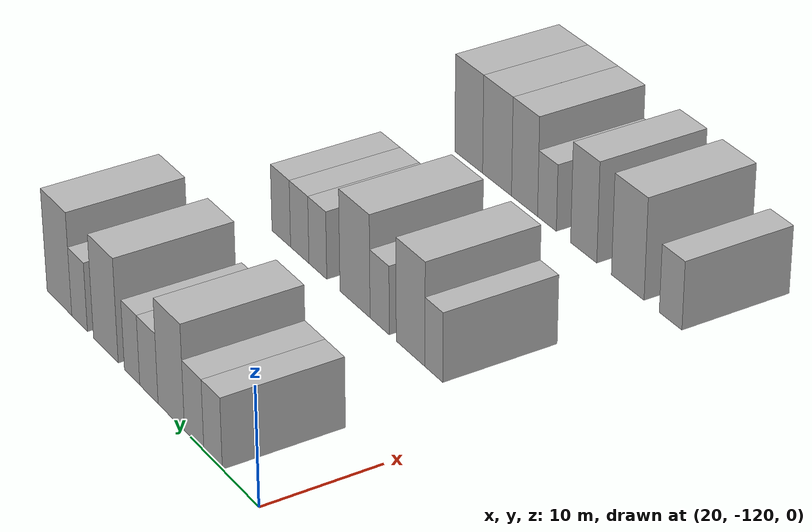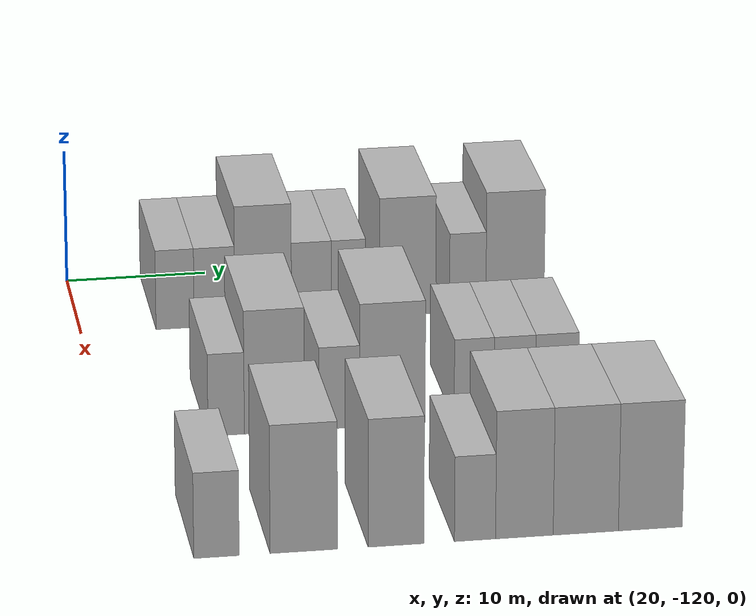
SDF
<sdf version="1.6">
 <world name="default">
  <model name="building_33">
   <static>1</static>
   <pose>25.0000 -113.3362 0 0.000000 0.000000 0.000000</pose>
   <link name="link">
    <pose>0 0 3.00 0 0 0</pose>
    <collision name="collision"><geometry><box><size>10.0000 2.7246 6.0000</size></box></geometry></collision>
    <visual name="visual">
     <cast_shadows>0</cast_shadows>
     <geometry><box><size>10.0000 2.7246 6.0000</size></box></geometry>
     <material>
      <script>
       <uri>model://HANNAS_wall/materials/scripts</uri>
       <uri>model://HANNAS_wall/materials/textures</uri>
       <name>vrc/HANNAS_wall</name>
      </script>
     </material>
    </visual>
   </link>
  </model>
  <model name="building_34">
   <static>1</static>
   <pose>25.0000 -110.5225 0 0.000000 0.000000 0.000000</pose>
   <link name="link">
    <pose>0 0 3.00 0 0 0</pose>
    <collision name="collision"><geometry><box><size>10.0000 2.9027 6.0000</size></box></geometry></collision>
    <visual name="visual">
     <cast_shadows>0</cast_shadows>
     <geometry><box><size>10.0000 2.9027 6.0000</size></box></geometry>
     <material>
      <script>
       <uri>model://HANNAS_wall/materials/scripts</uri>
       <uri>model://HANNAS_wall/materials/textures</uri>
       <name>vrc/HANNAS_wall</name>
      </script>
     </material>
    </visual>
   </link>
  </model>
  <model name="building_35">
   <static>1</static>
   <pose>25.0000 -107.0426 0 0.000000 0.000000 0.000000</pose>
   <link name="link">
    <pose>0 0 4.50 0 0 0</pose>
    <collision name="collision"><geometry><box><size>10.0000 4.0572 9.0000</size></box></geometry></collision>
    <visual name="visual">
     <cast_shadows>0</cast_shadows>
     <geometry><box><size>10.0000 4.0572 9.0000</size></box></geometry>
     <material>
      <script>
       <uri>model://HANNAS_wall/materials/scripts</uri>
       <uri>model://HANNAS_wall/materials/textures</uri>
       <name>vrc/HANNAS_wall</name>
      </script>
     </material>
    </visual>
   </link>
  </model>
  <model name="building_36">
   <static>1</static>
   <pose>25.0000 -103.5754 0 0.000000 0.000000 0.000000</pose>
   <link name="link">
    <pose>0 0 3.00 0 0 0</pose>
    <collision name="collision"><geometry><box><size>10.0000 2.8773 6.0000</size></box></geometry></collision>
    <visual name="visual">
     <cast_shadows>0</cast_shadows>
     <geometry><box><size>10.0000 2.8773 6.0000</size></box></geometry>
     <material>
      <script>
       <uri>model://HANNAS_wall/materials/scripts</uri>
       <uri>model://HANNAS_wall/materials/textures</uri>
       <name>vrc/HANNAS_wall</name>
      </script>
     </material>
    </visual>
   </link>
  </model>
  <model name="building_37">
   <static>1</static>
   <pose>25.0000 -100.9123 0 0.000000 0.000000 0.000000</pose>
   <link name="link">
    <pose>0 0 3.00 0 0 0</pose>
    <collision name="collision"><geometry><box><size>10.0000 2.4487 6.0000</size></box></geometry></collision>
    <visual name="visual">
     <cast_shadows>0</cast_shadows>
     <geometry><box><size>10.0000 2.4487 6.0000</size></box></geometry>
     <material>
      <script>
       <uri>model://HANNAS_wall/materials/scripts</uri>
       <uri>model://HANNAS_wall/materials/textures</uri>
       <name>vrc/HANNAS_wall</name>
      </script>
     </material>
    </visual>
   </link>
  </model>
  <model name="building_38">
   <static>1</static>
   <pose>25.0000 -96.6644 0 0.000000 0.000000 0.000000</pose>
   <link name="link">
    <pose>0 0 4.50 0 0 0</pose>
    <collision name="collision"><geometry><box><size>10.0000 4.0472 9.0000</size></box></geometry></collision>
    <visual name="visual">
     <cast_shadows>0</cast_shadows>
     <geometry><box><size>10.0000 4.0472 9.0000</size></box></geometry>
     <material>
      <script>
       <uri>model://HANNAS_wall/materials/scripts</uri>
       <uri>model://HANNAS_wall/materials/textures</uri>
       <name>vrc/HANNAS_wall</name>
      </script>
     </material>
    </visual>
   </link>
  </model>
  <model name="building_39">
   <static>1</static>
   <pose>25.0000 -92.3256 0 0.000000 0.000000 0.000000</pose>
   <link name="link">
    <pose>0 0 3.00 0 0 0</pose>
    <collision name="collision"><geometry><box><size>10.0000 2.6303 6.0000</size></box></geometry></collision>
    <visual name="visual">
     <cast_shadows>0</cast_shadows>
     <geometry><box><size>10.0000 2.6303 6.0000</size></box></geometry>
     <material>
      <script>
       <uri>model://HANNAS_wall/materials/scripts</uri>
       <uri>model://HANNAS_wall/materials/textures</uri>
       <name>vrc/HANNAS_wall</name>
      </script>
     </material>
    </visual>
   </link>
  </model>
  <model name="building_40">
   <static>1</static>
   <pose>25.0000 -88.8999 0 0.000000 0.000000 0.000000</pose>
   <link name="link">
    <pose>0 0 4.50 0 0 0</pose>
    <collision name="collision"><geometry><box><size>10.0000 4.2213 9.0000</size></box></geometry></collision>
    <visual name="visual">
     <cast_shadows>0</cast_shadows>
     <geometry><box><size>10.0000 4.2213 9.0000</size></box></geometry>
     <material>
      <script>
       <uri>model://HANNAS_wall/materials/scripts</uri>
       <uri>model://HANNAS_wall/materials/textures</uri>
       <name>vrc/HANNAS_wall</name>
      </script>
     </material>
    </visual>
   </link>
  </model>
  <model name="building_152">
   <static>1</static>
   <pose>44.0000 -112.1349 0 0.000000 0.000000 0.000000</pose>
   <link name="link">
    <pose>0 0 3.00 0 0 0</pose>
    <collision name="collision"><geometry><box><size>10.0000 2.4771 6.0000</size></box></geometry></collision>
    <visual name="visual">
     <cast_shadows>0</cast_shadows>
     <geometry><box><size>10.0000 2.4771 6.0000</size></box></geometry>
     <material>
      <script>
       <uri>model://HANNAS_wall/materials/scripts</uri>
       <uri>model://HANNAS_wall/materials/textures</uri>
       <name>vrc/HANNAS_wall</name>
      </script>
     </material>
    </visual>
   </link>
  </model>
  <model name="building_153">
   <static>1</static>
   <pose>44.0000 -108.8501 0 0.000000 0.000000 0.000000</pose>
   <link name="link">
    <pose>0 0 4.50 0 0 0</pose>
    <collision name="collision"><geometry><box><size>10.0000 4.0924 9.0000</size></box></geometry></collision>
    <visual name="visual">
     <cast_shadows>0</cast_shadows>
     <geometry><box><size>10.0000 4.0924 9.0000</size></box></geometry>
     <material>
      <script>
       <uri>model://HANNAS_wall/materials/scripts</uri>
       <uri>model://HANNAS_wall/materials/textures</uri>
       <name>vrc/HANNAS_wall</name>
      </script>
     </material>
    </visual>
   </link>
  </model>
  <model name="building_154">
   <static>1</static>
   <pose>44.0000 -104.4054 0 0.000000 0.000000 0.000000</pose>
   <link name="link">
    <pose>0 0 3.00 0 0 0</pose>
    <collision name="collision"><geometry><box><size>10.0000 2.7970 6.0000</size></box></geometry></collision>
    <visual name="visual">
     <cast_shadows>0</cast_shadows>
     <geometry><box><size>10.0000 2.7970 6.0000</size></box></geometry>
     <material>
      <script>
       <uri>model://HANNAS_wall/materials/scripts</uri>
       <uri>model://HANNAS_wall/materials/textures</uri>
       <name>vrc/HANNAS_wall</name>
      </script>
     </material>
    </visual>
   </link>
  </model>
  <model name="building_155">
   <static>1</static>
   <pose>44.0000 -100.7627 0 0.000000 0.000000 0.000000</pose>
   <link name="link">
    <pose>0 0 4.50 0 0 0</pose>
    <collision name="collision"><geometry><box><size>10.0000 4.4885 9.0000</size></box></geometry></collision>
    <visual name="visual">
     <cast_shadows>0</cast_shadows>
     <geometry><box><size>10.0000 4.4885 9.0000</size></box></geometry>
     <material>
      <script>
       <uri>model://HANNAS_wall/materials/scripts</uri>
       <uri>model://HANNAS_wall/materials/textures</uri>
       <name>vrc/HANNAS_wall</name>
      </script>
     </material>
    </visual>
   </link>
  </model>
  <model name="building_156">
   <static>1</static>
   <pose>44.0000 -95.1484 0 0.000000 0.000000 0.000000</pose>
   <link name="link">
    <pose>0 0 3.00 0 0 0</pose>
    <collision name="collision"><geometry><box><size>10.0000 2.7400 6.0000</size></box></geometry></collision>
    <visual name="visual">
     <cast_shadows>0</cast_shadows>
     <geometry><box><size>10.0000 2.7400 6.0000</size></box></geometry>
     <material>
      <script>
       <uri>model://HANNAS_wall/materials/scripts</uri>
       <uri>model://HANNAS_wall/materials/textures</uri>
       <name>vrc/HANNAS_wall</name>
      </script>
     </material>
    </visual>
   </link>
  </model>
  <model name="building_157">
   <static>1</static>
   <pose>44.0000 -92.3435 0 0.000000 0.000000 0.000000</pose>
   <link name="link">
    <pose>0 0 3.00 0 0 0</pose>
    <collision name="collision"><geometry><box><size>10.0000 2.8699 6.0000</size></box></geometry></collision>
    <visual name="visual">
     <cast_shadows>0</cast_shadows>
     <geometry><box><size>10.0000 2.8699 6.0000</size></box></geometry>
     <material>
      <script>
       <uri>model://HANNAS_wall/materials/scripts</uri>
       <uri>model://HANNAS_wall/materials/textures</uri>
       <name>vrc/HANNAS_wall</name>
      </script>
     </material>
    </visual>
   </link>
  </model>
  <model name="building_158">
   <static>1</static>
   <pose>44.0000 -89.4257 0 0.000000 0.000000 0.000000</pose>
   <link name="link">
    <pose>0 0 3.00 0 0 0</pose>
    <collision name="collision"><geometry><box><size>10.0000 2.9657 6.0000</size></box></geometry></collision>
    <visual name="visual">
     <cast_shadows>0</cast_shadows>
     <geometry><box><size>10.0000 2.9657 6.0000</size></box></geometry>
     <material>
      <script>
       <uri>model://HANNAS_wall/materials/scripts</uri>
       <uri>model://HANNAS_wall/materials/textures</uri>
       <name>vrc/HANNAS_wall</name>
      </script>
     </material>
    </visual>
   </link>
  </model>
  <model name="building_275">
   <static>1</static>
   <pose>63.0000 -115.2060 0 0.000000 0.000000 0.000000</pose>
   <link name="link">
    <pose>0 0 3.00 0 0 0</pose>
    <collision name="collision"><geometry><box><size>10.0000 2.9398 6.0000</size></box></geometry></collision>
    <visual name="visual">
     <cast_shadows>0</cast_shadows>
     <geometry><box><size>10.0000 2.9398 6.0000</size></box></geometry>
     <material>
      <script>
       <uri>model://HANNAS_wall/materials/scripts</uri>
       <uri>model://HANNAS_wall/materials/textures</uri>
       <name>vrc/HANNAS_wall</name>
      </script>
     </material>
    </visual>
   </link>
  </model>
  <model name="building_276">
   <static>1</static>
   <pose>63.0000 -109.5456 0 0.000000 0.000000 0.000000</pose>
   <link name="link">
    <pose>0 0 4.50 0 0 0</pose>
    <collision name="collision"><geometry><box><size>10.0000 4.3810 9.0000</size></box></geometry></collision>
    <visual name="visual">
     <cast_shadows>0</cast_shadows>
     <geometry><box><size>10.0000 4.3810 9.0000</size></box></geometry>
     <material>
      <script>
       <uri>model://HANNAS_wall/materials/scripts</uri>
       <uri>model://HANNAS_wall/materials/textures</uri>
       <name>vrc/HANNAS_wall</name>
      </script>
     </material>
    </visual>
   </link>
  </model>
  <model name="building_277">
   <static>1</static>
   <pose>63.0000 -103.5331 0 0.000000 0.000000 0.000000</pose>
   <link name="link">
    <pose>0 0 4.50 0 0 0</pose>
    <collision name="collision"><geometry><box><size>10.0000 3.6441 9.0000</size></box></geometry></collision>
    <visual name="visual">
     <cast_shadows>0</cast_shadows>
     <geometry><box><size>10.0000 3.6441 9.0000</size></box></geometry>
     <material>
      <script>
       <uri>model://HANNAS_wall/materials/scripts</uri>
       <uri>model://HANNAS_wall/materials/textures</uri>
       <name>vrc/HANNAS_wall</name>
      </script>
     </material>
    </visual>
   </link>
  </model>
  <model name="building_278">
   <static>1</static>
   <pose>63.0000 -98.3632 0 0.000000 0.000000 0.000000</pose>
   <link name="link">
    <pose>0 0 3.00 0 0 0</pose>
    <collision name="collision"><geometry><box><size>10.0000 2.6957 6.0000</size></box></geometry></collision>
    <visual name="visual">
     <cast_shadows>0</cast_shadows>
     <geometry><box><size>10.0000 2.6957 6.0000</size></box></geometry>
     <material>
      <script>
       <uri>model://HANNAS_wall/materials/scripts</uri>
       <uri>model://HANNAS_wall/materials/textures</uri>
       <name>vrc/HANNAS_wall</name>
      </script>
     </material>
    </visual>
   </link>
  </model>
  <model name="building_279">
   <static>1</static>
   <pose>63.0000 -95.1181 0 0.000000 0.000000 0.000000</pose>
   <link name="link">
    <pose>0 0 4.50 0 0 0</pose>
    <collision name="collision"><geometry><box><size>10.0000 3.7945 9.0000</size></box></geometry></collision>
    <visual name="visual">
     <cast_shadows>0</cast_shadows>
     <geometry><box><size>10.0000 3.7945 9.0000</size></box></geometry>
     <material>
      <script>
       <uri>model://HANNAS_wall/materials/scripts</uri>
       <uri>model://HANNAS_wall/materials/textures</uri>
       <name>vrc/HANNAS_wall</name>
      </script>
     </material>
    </visual>
   </link>
  </model>
  <model name="building_280">
   <static>1</static>
   <pose>63.0000 -91.0675 0 0.000000 0.000000 0.000000</pose>
   <link name="link">
    <pose>0 0 4.50 0 0 0</pose>
    <collision name="collision"><geometry><box><size>10.0000 4.3066 9.0000</size></box></geometry></collision>
    <visual name="visual">
     <cast_shadows>0</cast_shadows>
     <geometry><box><size>10.0000 4.3066 9.0000</size></box></geometry>
     <material>
      <script>
       <uri>model://HANNAS_wall/materials/scripts</uri>
       <uri>model://HANNAS_wall/materials/textures</uri>
       <name>vrc/HANNAS_wall</name>
      </script>
     </material>
    </visual>
   </link>
  </model>
  <model name="building_281">
   <static>1</static>
   <pose>63.0000 -86.8014 0 0.000000 0.000000 0.000000</pose>
   <link name="link">
    <pose>0 0 4.50 0 0 0</pose>
    <collision name="collision"><geometry><box><size>10.0000 4.2257 9.0000</size></box></geometry></collision>
    <visual name="visual">
     <cast_shadows>0</cast_shadows>
     <geometry><box><size>10.0000 4.2257 9.0000</size></box></geometry>
     <material>
      <script>
       <uri>model://HANNAS_wall/materials/scripts</uri>
       <uri>model://HANNAS_wall/materials/textures</uri>
       <name>vrc/HANNAS_wall</name>
      </script>
     </material>
    </visual>
   </link>
  </model>
 </world>
</sdf>
